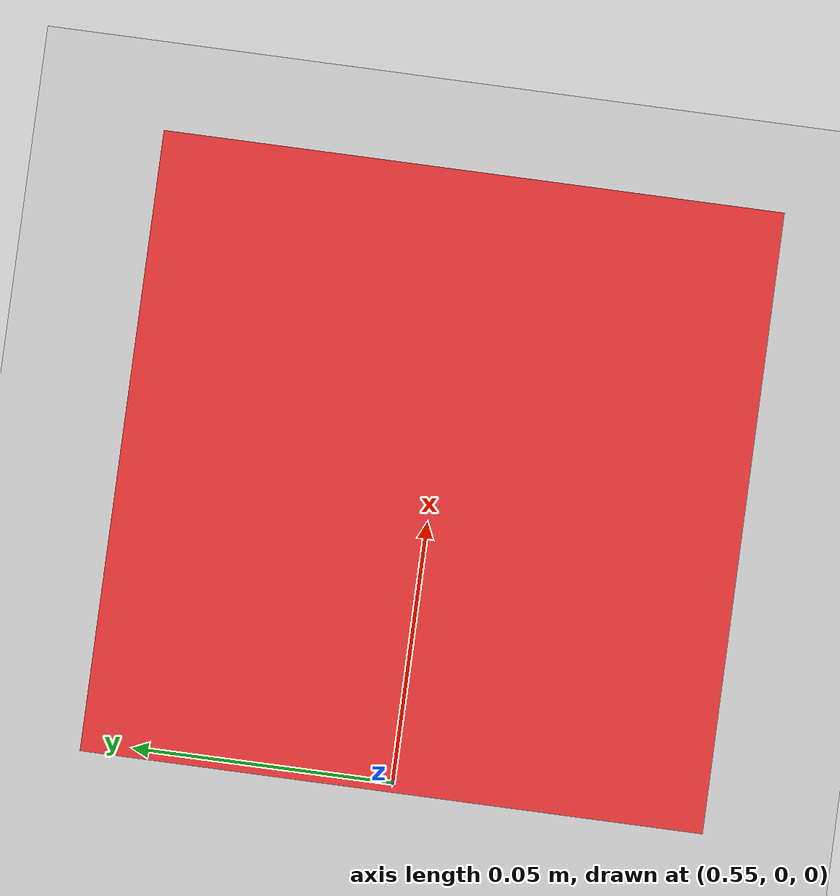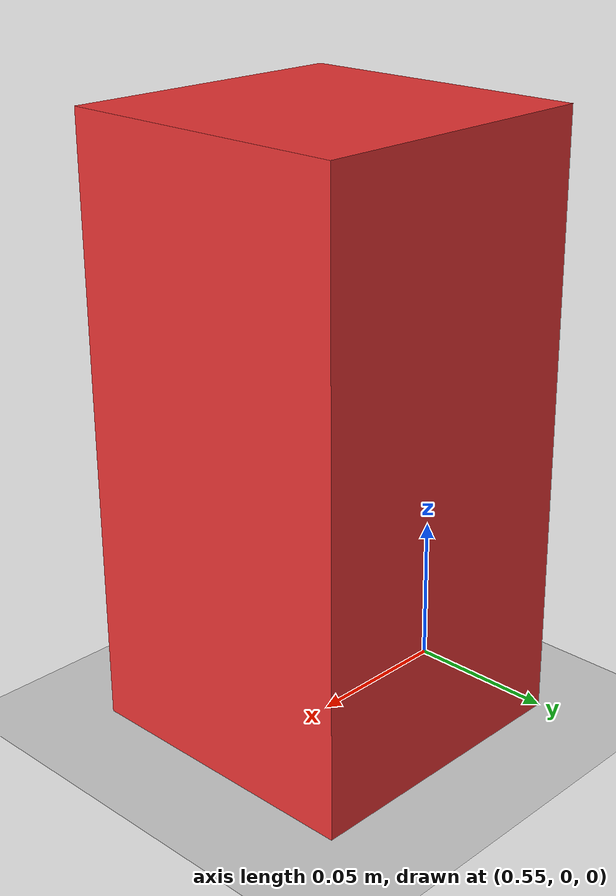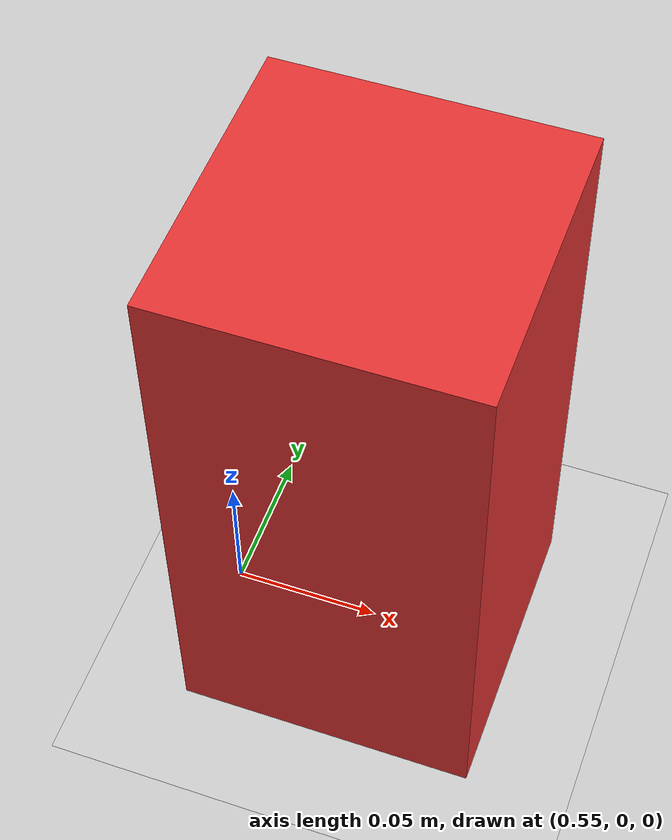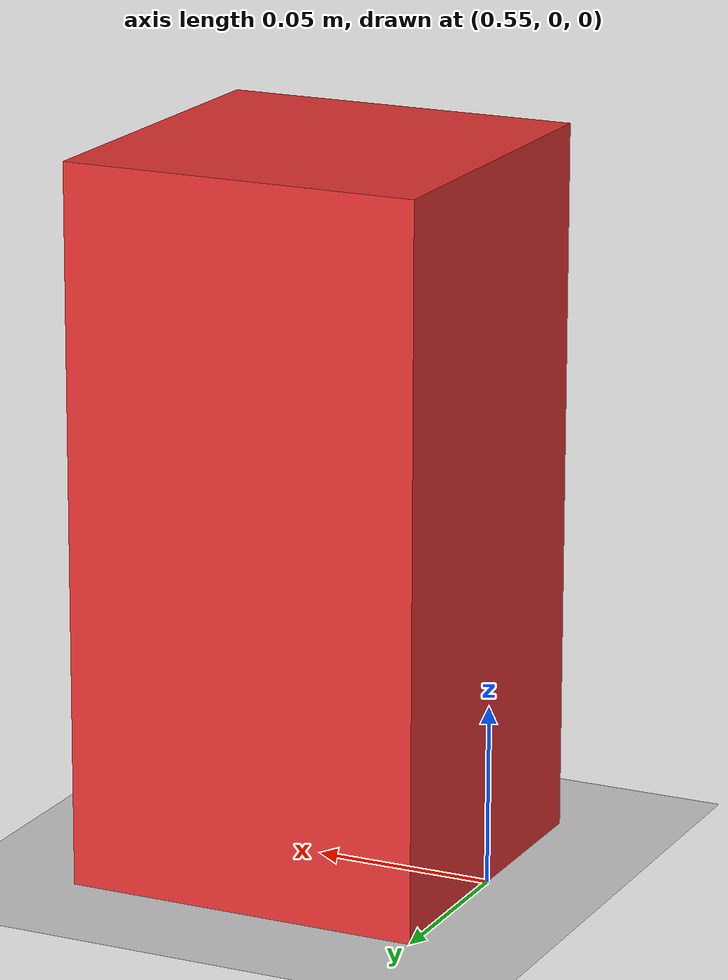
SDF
<?xml version="1.0" ?>
<sdf version="1.6">
  <world name="empty">
    <physics name="1ms" type="ignored">
      <max_step_size>0.001</max_step_size>
      <real_time_factor>1.0</real_time_factor>
    </physics>
    <plugin filename="gz-sim-physics-system" name="gz::sim::systems::Physics"/>
    <plugin filename="gz-sim-user-commands-system" name="gz::sim::systems::UserCommands"/>
    <plugin filename="gz-sim-scene-broadcaster-system" name="gz::sim::systems::SceneBroadcaster"/>
    <plugin filename="gz-sim-contact-system" name="gz::sim::systems::Contact"/>
    <plugin filename="gz-sim-sensors-system" name="gz::sim::systems::Sensors">
      <render_engine>ogre2</render_engine>
    </plugin>

    <light type="directional" name="sun">
      <cast_shadows>true</cast_shadows>
      <pose>0 0 10 0 0 0</pose>
      <diffuse>0.8 0.8 0.8 1</diffuse>
      <specular>0.2 0.2 0.2 1</specular>
      <attenuation>
        <range>1000</range>
        <constant>0.9</constant>
        <linear>0.01</linear>
        <quadratic>0.001</quadratic>
      </attenuation>
      <direction>-0.5 0.1 -0.9</direction>
    </light>

    <model name="ground_plane">
      <static>true</static>
      <link name="link">
        <collision name="collision">
          <geometry>
            <plane>
              <normal>0 0 1</normal>
              <size>100 100</size>
            </plane>
          </geometry>
        </collision>
        <visual name="visual">
          <geometry>
            <plane>
              <normal>0 0 1</normal>
              <size>100 100</size>
            </plane>
          </geometry>
          <material>
            <ambient>0.8 0.8 0.8 1</ambient>
            <diffuse>0.8 0.8 0.8 1</diffuse>
            <specular>0.8 0.8 0.8 1</specular>
          </material>
        </visual>
      </link>
    </model>

    <!-- A reference box in front of the FR3 so the D435 camera sees something -->
    <model name="reference_box">
      <static>true</static>
      <pose>0.6 0 0.1 0 0 0</pose>
      <link name="link">
        <visual name="visual">
          <geometry>
            <box><size>0.1 0.1 0.2</size></box>
          </geometry>
          <material>
            <ambient>0.9 0.2 0.2 1</ambient>
            <diffuse>0.9 0.2 0.2 1</diffuse>
          </material>
        </visual>
        <collision name="collision">
          <geometry>
            <box><size>0.1 0.1 0.2</size></box>
          </geometry>
        </collision>
      </link>
    </model>

  </world>
</sdf>
